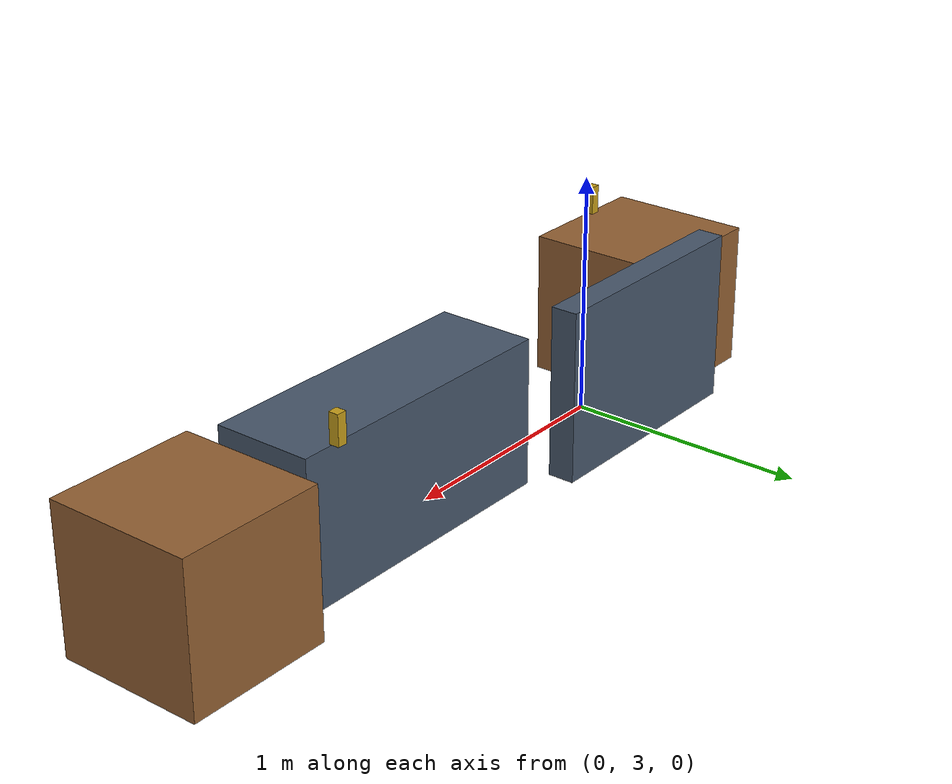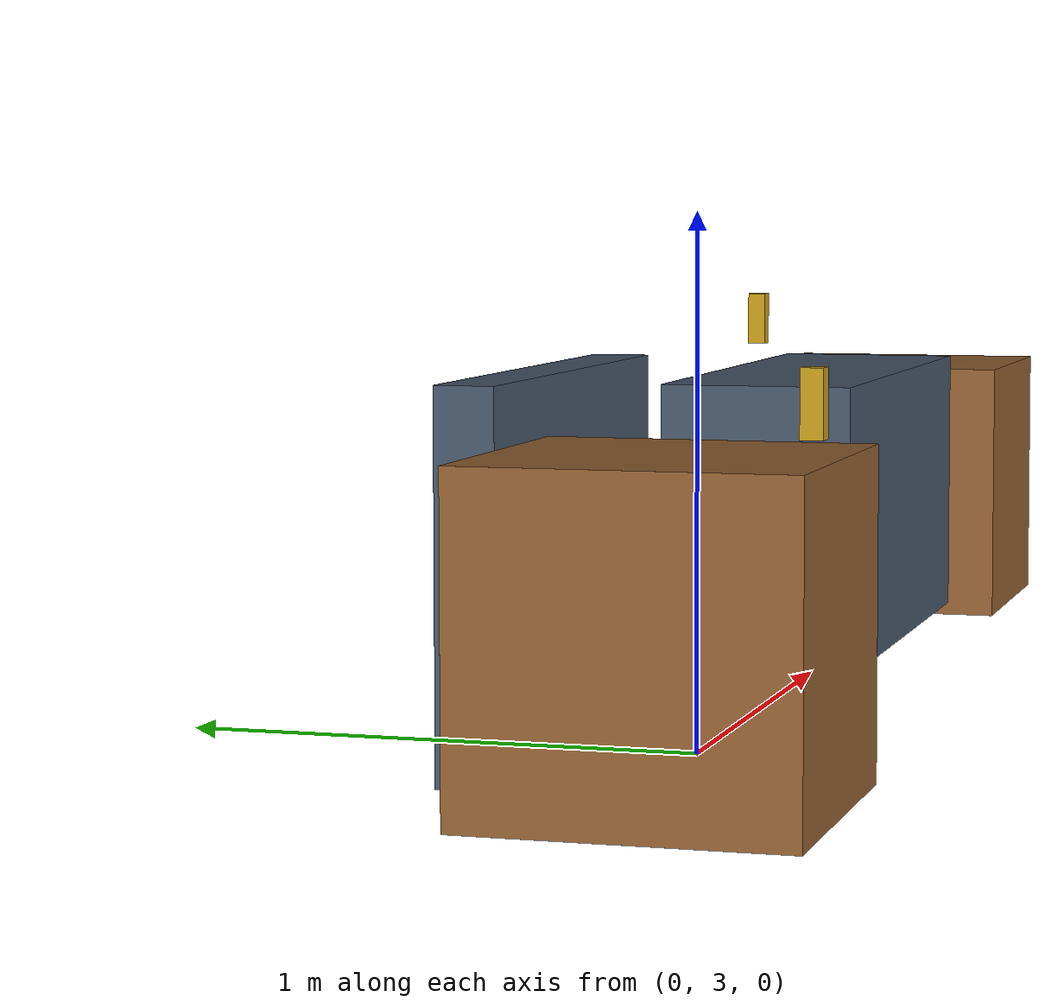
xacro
<?xml version="1.0"?>
<robot xmlns:xacro="http://ros.org/wiki/xacro" name="cell_b">

  <gazebo>
    <static>true</static>
  </gazebo>

  <!-- The facility root. Tied to the surveyed physical origin (L5); every frame
       below is expressed relative to it. -->
  <link name="cite_world"/>

  <material name="conveyor_frame">
    <color rgba="0.28 0.34 0.42 1"/>
  </material>
  <material name="sensor_housing">
    <color rgba="0.78 0.62 0.1 1"/>
  </material>
  <material name="table_top">
    <color rgba="0.58 0.38 0.2 1"/>
  </material>

  <!-- infeed_beam — break_beam -->
  <link name="infeed_beam_base_link">
    <inertial>
      <origin xyz="0 0 0.06" rpy="0 0 0"/>
      <mass value="0.25"/>
      <inertia ixx="0.00033333" ixy="0"
               ixz="0" iyy="0.00033333"
               iyz="0" izz="6.667e-05"/>
    </inertial>
    <visual>
      <origin xyz="0 0 0.06" rpy="0 0 0"/>
      <geometry><box size="0.04 0.04 0.12"/></geometry>
      <material name="sensor_housing"/>
    </visual>
    <collision>
      <origin xyz="0 0 0.06" rpy="0 0 0"/>
      <geometry><box size="0.04 0.04 0.12"/></geometry>
    </collision>
  </link>
  <joint name="infeed_beam_anchor" type="fixed">
    <parent link="cite_world"/>
    <child link="infeed_beam_base_link"/>
    <origin xyz="-0.5 2.674 0.63" rpy="0 0 0"/>
  </joint>
  <link name="infeed_beam_beam"/>
  <joint name="infeed_beam_beam_fixed" type="fixed">
    <parent link="infeed_beam_base_link"/>
    <child link="infeed_beam_beam"/>
    <origin xyz="0 0 0" rpy="0 0 0"/>
  </joint>

  <!-- infeed_table — work_table_600 -->
  <link name="infeed_table_base_link">
    <inertial>
      <origin xyz="0 0 0.3" rpy="0 0 0"/>
      <mass value="30"/>
      <inertia ixx="1.8" ixy="0"
               ixz="0" iyy="1.8"
               iyz="0" izz="1.8"/>
    </inertial>
    <visual>
      <origin xyz="0 0 0.3" rpy="0 0 0"/>
      <geometry><box size="0.6 0.6 0.6"/></geometry>
      <material name="table_top"/>
    </visual>
    <collision>
      <origin xyz="0 0 0.3" rpy="0 0 0"/>
      <geometry><box size="0.6 0.6 0.6"/></geometry>
    </collision>
  </link>
  <joint name="infeed_table_anchor" type="fixed">
    <parent link="cite_world"/>
    <child link="infeed_table_base_link"/>
    <origin xyz="-0.5 2.924 0" rpy="0 0 0"/>
  </joint>
  <link name="infeed_table_surface"/>
  <joint name="infeed_table_surface_fixed" type="fixed">
    <parent link="infeed_table_base_link"/>
    <child link="infeed_table_surface"/>
    <origin xyz="0 0 0.6" rpy="0 0 0"/>
  </joint>

  <!-- outfeed_beam — break_beam -->
  <link name="outfeed_beam_base_link">
    <inertial>
      <origin xyz="0 0 0.06" rpy="0 0 0"/>
      <mass value="0.25"/>
      <inertia ixx="0.00033333" ixy="0"
               ixz="0" iyy="0.00033333"
               iyz="0" izz="6.667e-05"/>
    </inertial>
    <visual>
      <origin xyz="0 0 0.06" rpy="0 0 0"/>
      <geometry><box size="0.04 0.04 0.12"/></geometry>
      <material name="sensor_housing"/>
    </visual>
    <collision>
      <origin xyz="0 0 0.06" rpy="0 0 0"/>
      <geometry><box size="0.04 0.04 0.12"/></geometry>
    </collision>
  </link>
  <joint name="outfeed_beam_anchor" type="fixed">
    <parent link="cite_world"/>
    <child link="outfeed_beam_base_link"/>
    <origin xyz="1.805 3.31 0.665" rpy="0 0 0"/>
  </joint>
  <link name="outfeed_beam_beam"/>
  <joint name="outfeed_beam_beam_fixed" type="fixed">
    <parent link="outfeed_beam_base_link"/>
    <child link="outfeed_beam_beam"/>
    <origin xyz="0 0 0" rpy="0 0 0"/>
  </joint>

  <!-- outfeed_table — work_table_600 -->
  <link name="outfeed_table_base_link">
    <inertial>
      <origin xyz="0 0 0.3" rpy="0 0 0"/>
      <mass value="30"/>
      <inertia ixx="1.8" ixy="0"
               ixz="0" iyy="1.8"
               iyz="0" izz="1.8"/>
    </inertial>
    <visual>
      <origin xyz="0 0 0.3" rpy="0 0 0"/>
      <geometry><box size="0.6 0.6 0.6"/></geometry>
      <material name="table_top"/>
    </visual>
    <collision>
      <origin xyz="0 0 0.3" rpy="0 0 0"/>
      <geometry><box size="0.6 0.6 0.6"/></geometry>
    </collision>
  </link>
  <joint name="outfeed_table_anchor" type="fixed">
    <parent link="cite_world"/>
    <child link="outfeed_table_base_link"/>
    <origin xyz="2.26 3.06 0" rpy="0 0 0"/>
  </joint>
  <link name="outfeed_table_surface"/>
  <joint name="outfeed_table_surface_fixed" type="fixed">
    <parent link="outfeed_table_base_link"/>
    <child link="outfeed_table_surface"/>
    <origin xyz="0 0 0.6" rpy="0 0 0"/>
  </joint>

  <!-- picker_track — ufactory_linear_motor -->
  <link name="picker_track_base_link">
    <inertial>
      <origin xyz="0 0 0.3525" rpy="0 0 0"/>
      <mass value="25"/>
      <inertia ixx="1.0607" ixy="0"
               ixz="0" iyy="3.1188"
               iyz="0" izz="2.1086"/>
    </inertial>
    <visual>
      <origin xyz="0 0 0.3525" rpy="0 0 0"/>
      <geometry><box size="1 0.11 0.705"/></geometry>
      <material name="conveyor_frame"/>
    </visual>
    <collision>
      <origin xyz="0 0 0.3525" rpy="0 0 0"/>
      <geometry><box size="1 0.11 0.705"/></geometry>
    </collision>
  </link>
  <joint name="picker_track_anchor" type="fixed">
    <parent link="cite_world"/>
    <child link="picker_track_base_link"/>
    <origin xyz="0.05 3.3 0" rpy="0 0 0"/>
  </joint>

  <!-- transfer_belt — belt_1200x400 -->
  <link name="transfer_belt_base_link">
    <inertial>
      <origin xyz="0 0 0.3" rpy="0 0 0"/>
      <mass value="45"/>
      <inertia ixx="1.95" ixy="0"
               ixz="0" iyy="6.75"
               iyz="0" izz="6"/>
    </inertial>
    <visual>
      <origin xyz="0 0 0.3" rpy="0 0 0"/>
      <geometry><box size="1.2 0.4 0.6"/></geometry>
      <material name="conveyor_frame"/>
    </visual>
    <collision>
      <origin xyz="0 0 0.3" rpy="0 0 0"/>
      <geometry><box size="1.2 0.4 0.6"/></geometry>
    </collision>
  </link>
  <joint name="transfer_belt_anchor" type="fixed">
    <parent link="cite_world"/>
    <child link="transfer_belt_base_link"/>
    <origin xyz="1.31 3.06 0.035" rpy="0 0 0"/>
  </joint>
  <link name="transfer_belt_infeed"/>
  <joint name="transfer_belt_infeed_fixed" type="fixed">
    <parent link="transfer_belt_base_link"/>
    <child link="transfer_belt_infeed"/>
    <origin xyz="-0.545 0 0.6" rpy="0 0 0"/>
  </joint>
  <link name="transfer_belt_outfeed"/>
  <joint name="transfer_belt_outfeed_fixed" type="fixed">
    <parent link="transfer_belt_base_link"/>
    <child link="transfer_belt_outfeed"/>
    <origin xyz="0.545 0 0.6" rpy="0 0 0"/>
  </joint>
  <link name="transfer_belt_surface"/>
  <joint name="transfer_belt_surface_fixed" type="fixed">
    <parent link="transfer_belt_base_link"/>
    <child link="transfer_belt_surface"/>
    <origin xyz="0 0 0.6" rpy="0 0 0"/>
  </joint>

</robot>
